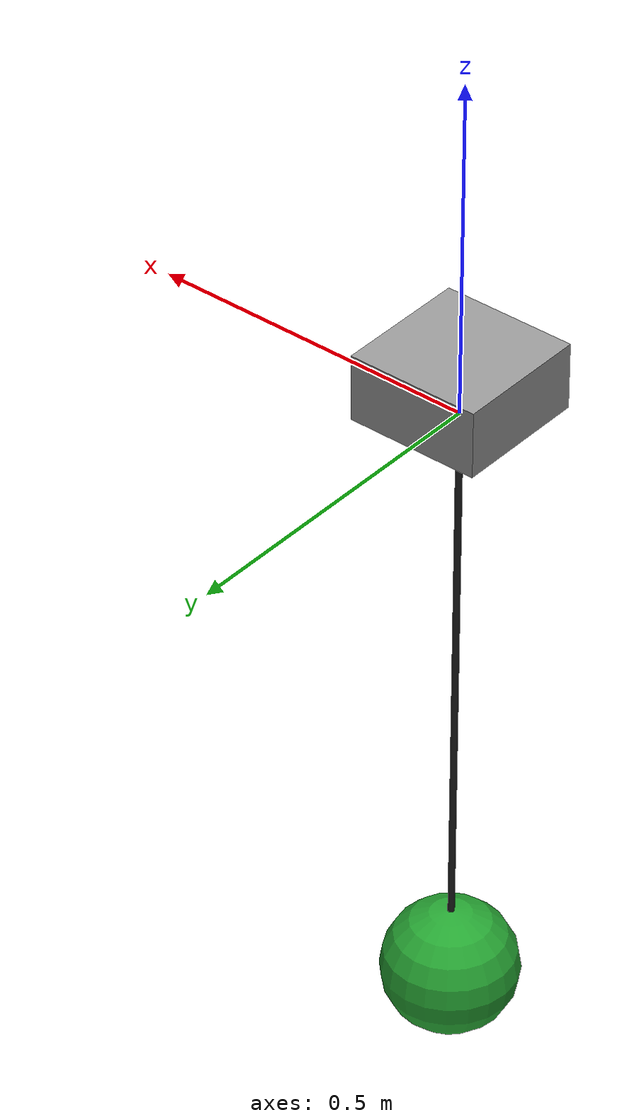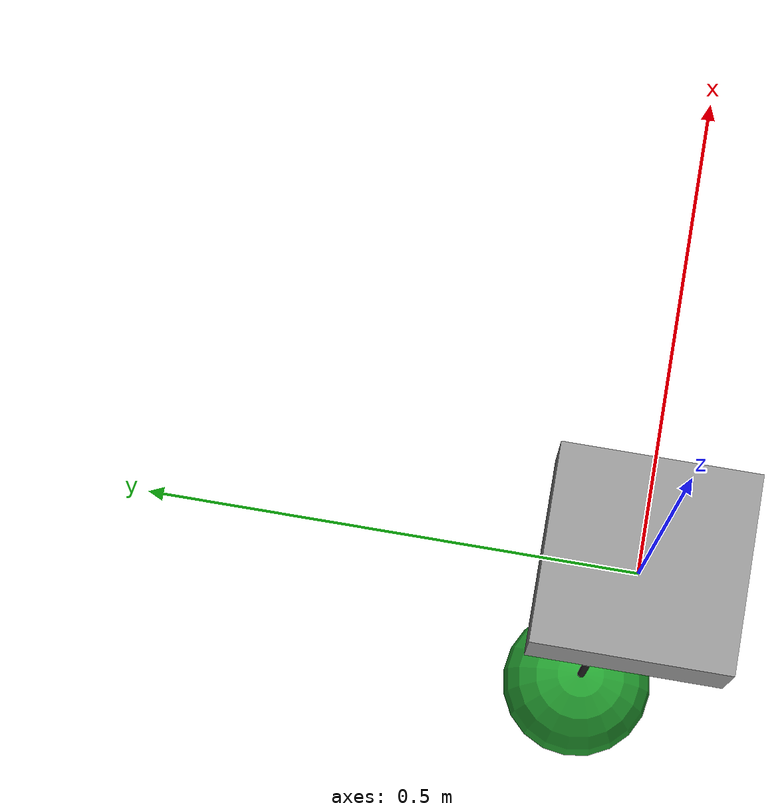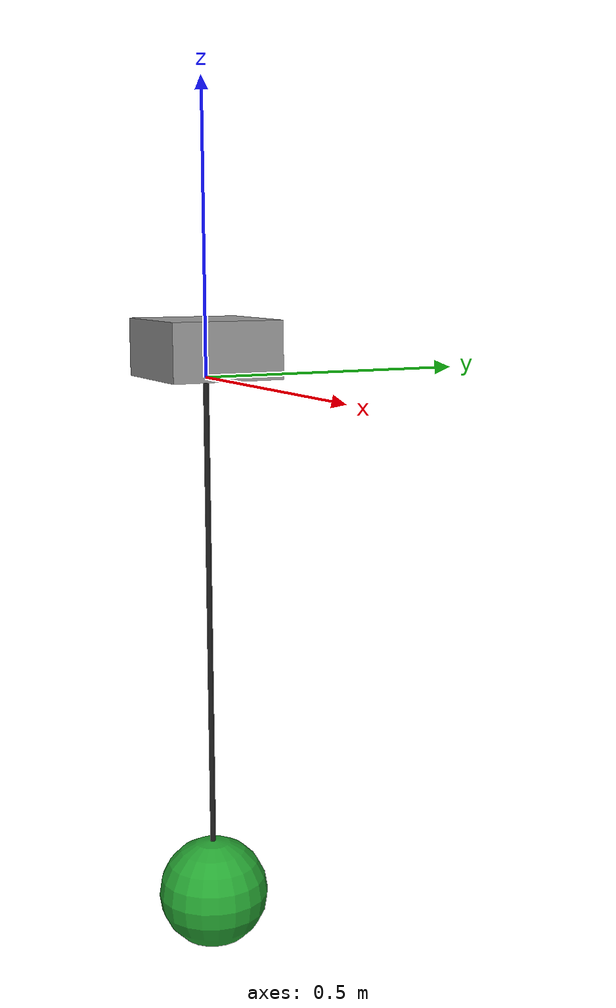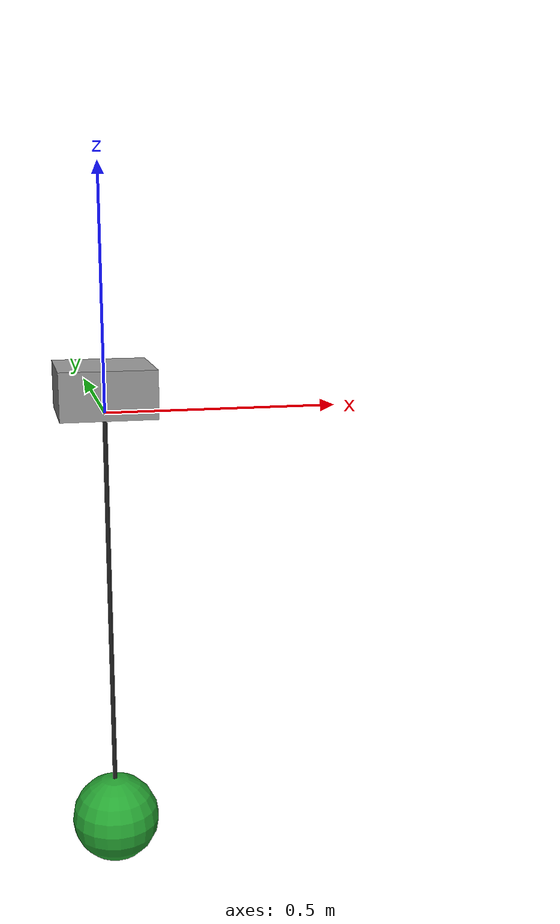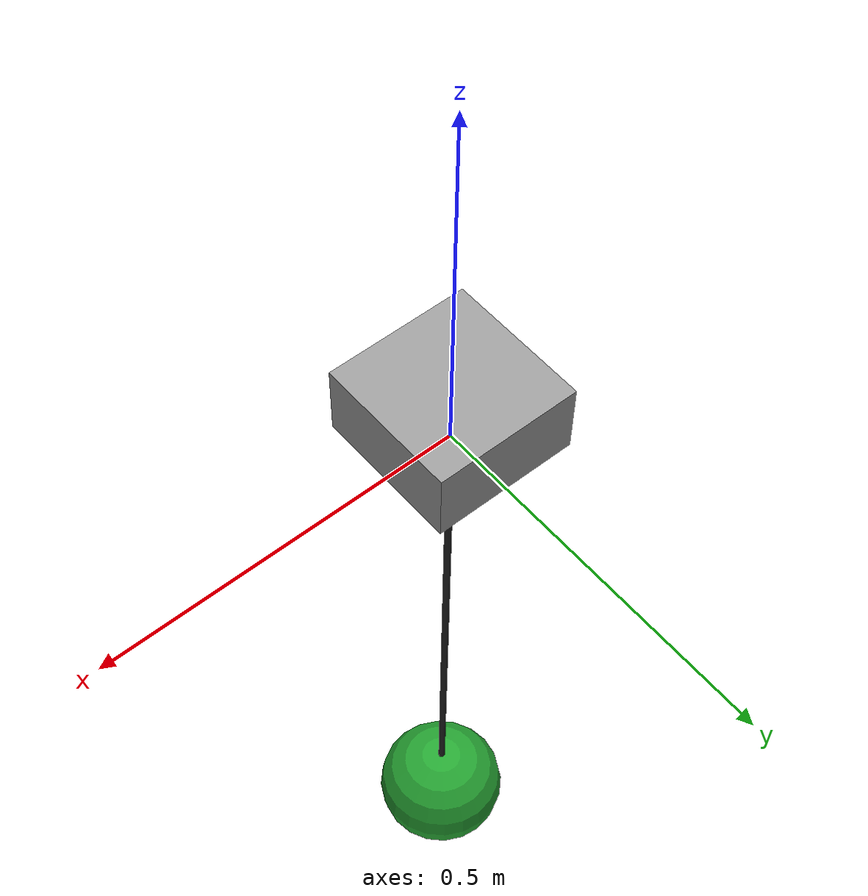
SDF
<?xml version="1.0" ?>
<sdf version="1.5">
  <model name="tetherball">
    <!-- Base Link -->
    <link name="base">
      <kinematic>true</kinematic>
      <pose>0 0 0.05 0 0 0</pose>
      <collision name="collision">
        <geometry>
          <box>
            <size>0.2 0.2 0.1</size>
          </box>
        </geometry>
      </collision>
      <visual name="visual">
        <geometry>
          <box>
            <size>0.2 0.2 0.1</size>
          </box>
        </geometry>
	<material>
          <script>
            <name>Gazebo/Gray</name>
            <uri>file://media/materials/scripts/gazebo.material</uri>
          </script>
	</material>
      </visual>
    </link>

    <!-- Ball in Socket Joint -->
    <joint name="hinge" type="ball">
      <parent>base</parent>
      <child>rod</child>
      <pose relative_to="base">0 0 0 0 0 0</pose>
    </joint>

    <!-- Rod -->
    <link name="rod">
      <pose relative_to="hinge">0 0 -0.5 0 0 0</pose>
      <inertial>
        <mass>0.100</mass>
        <inertia>
          <ixx>0.008333</ixx>
          <iyy>0.008333</iyy>
          <izz>0.000001</izz>
          <ixy>0</ixy>
          <ixz>0</ixz>
          <iyz>0</iyz>
        </inertia>
      </inertial>
      <collision name="collision">
        <geometry>
          <cylinder>
            <radius>0.005</radius>
            <length>1.0</length>
          </cylinder>
        </geometry>
      </collision>
      <visual name="visual">
        <geometry>
          <cylinder>
            <radius>0.005</radius>
            <length>1.0</length>
          </cylinder>
        </geometry>
	<material>
          <script>
            <name>Gazebo/Black</name>
            <uri>file://media/materials/scripts/gazebo.material</uri>
          </script>
	</material>
      </visual>
    </link>

    <!-- Ball -->
    <joint name="attach-ball" type="fixed">
      <parent>rod</parent>
      <child>ball</child>
      <pose relative_to="hinge">0 0 -1.0 0 0 0</pose>
    </joint>
    <link name="ball">
      <pose relative_to="attach-ball">0 0 0 0 0 0</pose>
      <inertial>
        <mass>0.200</mass>
        <inertia>
          <ixx>0.0008</ixx>
          <iyy>0.0008</iyy>
          <izz>0.0008</izz>
          <ixy>0</ixy>
          <ixz>0</ixz>
          <iyz>0</iyz>
        </inertia>
      </inertial>
      <collision name="collision">
        <geometry>
          <sphere>
            <radius>0.1</radius>
          </sphere>
        </geometry>
      </collision>
      <visual name="visual">
        <geometry>
          <sphere>
            <radius>0.1</radius>
          </sphere>
        </geometry>
	<material>
          <script>
            <name>Gazebo/Green</name>
            <uri>file://media/materials/scripts/gazebo.material</uri>
          </script>
	</material>
      </visual>
    </link>
  </model>
</sdf>
